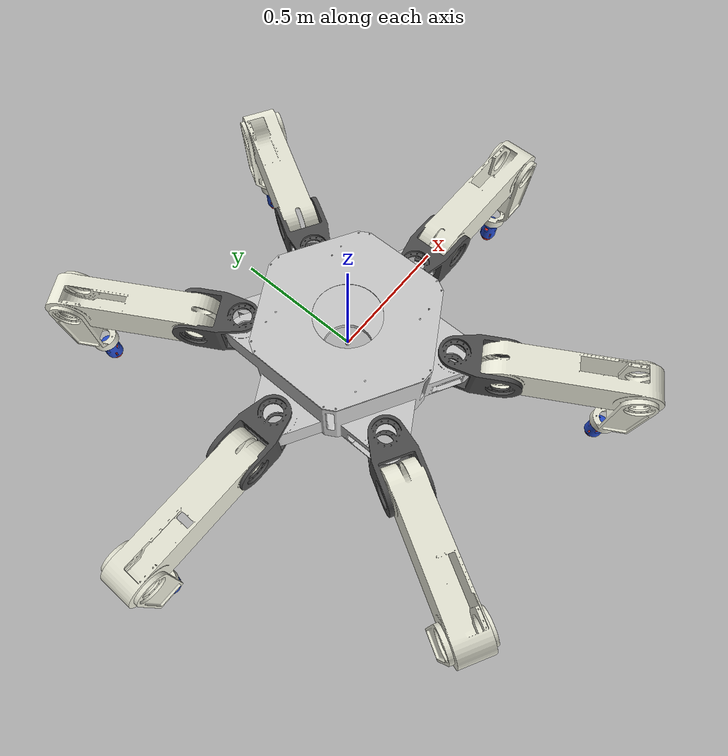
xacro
<?xml version="1.0"?>
<robot name="EISpider"
    xmlns:xacro="http://www.ros.org/wiki/xacro">

    <!-- The following included files set up definitions of parts of the robot body -->
    <xacro:include filename="$(find fast_legged_planner)/model/hit_spider/xacro/common.xacro"/>

    <!-- EISpider  trunk -->
    <xacro:include filename="$(find fast_legged_planner)/model/hit_spider/xacro/base/base.xacro"/>
    <xacro:EISpider_base/>

    <!-- EISpider  legs -->
    <xacro:include filename="$(find fast_legged_planner)/model/hit_spider/xacro/leg/leg.xacro"/>
    <xacro:EISpider_Leg LegName="lf" leg_x="${leg_lf_x}" leg_y="${leg_lf_y}" leg_yaw="${leg_lf_yaw}"/>
    <xacro:EISpider_Leg LegName="lm" leg_x="${leg_lm_x}" leg_y="${leg_lm_y}" leg_yaw="${leg_lm_yaw}"/>
    <xacro:EISpider_Leg LegName="lh" leg_x="${leg_lh_x}" leg_y="${leg_lh_y}" leg_yaw="${leg_lh_yaw}"/>
    <xacro:EISpider_Leg LegName="rf" leg_x="${leg_rf_x}" leg_y="${leg_rf_y}" leg_yaw="${leg_rf_yaw}"/>
    <xacro:EISpider_Leg LegName="rm" leg_x="${leg_rm_x}" leg_y="${leg_rm_y}" leg_yaw="${leg_rm_yaw}"/>
    <xacro:EISpider_Leg LegName="rh" leg_x="${leg_rh_x}" leg_y="${leg_rh_y}" leg_yaw="${leg_rh_yaw}"/>
    <xacro:include filename="$(find fast_legged_planner)/model/hit_spider/gazebo/gazebo.urdf.xacro"/>

</robot>

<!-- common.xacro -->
<robot xmlns:xacro="http://www.ros.org/wiki/xacro" name="robot param">
    <!--pi-->
    <xacro:property name="PI" value="3.1415926535897931"/>

    <!--leg roots' position-->
    <xacro:property name="leg_lf_x" value="0.3464" />
    <xacro:property name="leg_lm_x" value="0.0" />
    <xacro:property name="leg_lh_x" value="-0.3464" />
    <xacro:property name="leg_rh_x" value="-0.3464" />
    <xacro:property name="leg_rm_x" value="0" />
    <xacro:property name="leg_rf_x" value="0.3464" />
    <xacro:property name="leg_lf_y" value="0.2" />
    <xacro:property name="leg_lm_y" value="0.4" />
    <xacro:property name="leg_lh_y" value="0.2" />
    <xacro:property name="leg_rh_y" value="-0.2" />
    <xacro:property name="leg_rm_y" value="-0.4" />
    <xacro:property name="leg_rf_y" value="-0.2" />
    <xacro:property name="leg_lf_yaw" value="${PI/6}" />
    <xacro:property name="leg_lm_yaw" value="${PI/2}" />
    <xacro:property name="leg_lh_yaw" value="${5*PI/6}" />
    <xacro:property name="leg_rh_yaw" value="${-5*PI/6}" />
    <xacro:property name="leg_rm_yaw" value="${-PI/2}" />
    <xacro:property name="leg_rf_yaw" value="${-PI/6}" />
    <!--leg links' length-->
    <xacro:property name="link1_length" value="0.18" />
    <xacro:property name="link2_length" value="0.5" />
    <xacro:property name="link3_length" value="0.5" />

    <!--mass-->
    <xacro:property name="base_mass" value="121.8957" />
    <xacro:property name="link1_mass" value="3.6031" />
    <xacro:property name="link2_mass" value="21.9855" />
    <xacro:property name="link3_mass" value="7.4018" />

    <!--inerials-->
    <xacro:property name="base_ixx" value="5.0930" />
    <xacro:property name="base_iyy" value="5.0930" />
    <xacro:property name="base_izz" value="8.2937" />
    <xacro:property name="link1_ixx" value="0.011212" />
    <xacro:property name="link1_iyy" value="0.03169" />
    <xacro:property name="link1_izz" value="0.03169" />
    <xacro:property name="link2_ixx" value="0.07020" />
    <xacro:property name="link2_iyy" value="0.7228" />
    <xacro:property name="link2_izz" value="0.7228" />
    <xacro:property name="link3_ixx" value="0.02290" />
    <xacro:property name="link3_iyy" value="0.14949" />
    <xacro:property name="link3_izz" value="0.14949" />
</robot>

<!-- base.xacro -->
<robot xmlns:xacro="http://ros.org/wiki/xacro">

    <!-- ================================ Robot Base ================================ -->
    <!-- The xacro macro xacro: EISpider_base contains: base and trunk -->
    <xacro:macro name="EISpider_base">
        <!-- Floating-base Joint -->
        <joint name="jnt_floating_base" type="fixed">
            <origin xyz="0 0 0" rpy="0 0 ${PI/2}"/>
            <parent link="link_base"/>
            <child link="link_trunk"/>
        </joint>
        <!-- Links -->
        <!-- Footprint link -->
        <link name="link_base">
            <visual>
                <geometry>
                    <cylinder length="0.01" radius="0.01"/>
                </geometry>
                <material name="bbbb">
                    <color rgba="0.8 0.8 0.8 1"/>
                </material>
            </visual>
        </link>
        <!-- Base link -->
        <link name="link_trunk">
            <visual>
                <origin xyz="-0.4264 -0.48 -0.07" rpy="${PI/2} 0 ${PI/2}"/>
                <geometry>
                    <mesh filename="package://fast_legged_planner/model/hit_spider/meshes/base_1.stl" scale="0.001 0.001 0.001"/>
                </geometry>
                <material name="bbbb"/>
            </visual>

            <visual>
                <origin xyz=" -0.350 -0.315 0.22" rpy="${PI/2} 0 ${PI/2}"/>
                <geometry>
                    <mesh filename="package://fast_legged_planner/model/hit_spider/meshes/base_2.stl" scale="0.001 0.001 0.001"/>
                </geometry>
                <material name="bbbb"/>
            </visual>

            <collision>
                <origin xyz="0 0 0.1" rpy="0 0 0"/>
                <geometry>
                    <cylinder length="0.3" radius="0.3"/>
                </geometry>
            </collision>

            <inertial>
                <origin xyz="0 0 0.1" rpy="0 0 0"/>
                <mass value="${base_mass}"/>
                <inertia ixx="${base_ixx}" ixy="0.0" ixz="0.0" iyy="${base_iyy}" iyz="0.0" izz="${base_izz}"/>
            </inertial>
        </link>

        <!--/IMU sensor gazebo plugin-->
        <xacro:include filename="$(find fast_legged_planner)/model/hit_spider/xacro/base/base.gazebo.xacro"/>
        <xacro:IMUsensor load_imu_sensor="true" link_name="link_base" x="0" y="0" z="0"/>
    </xacro:macro>

</robot>

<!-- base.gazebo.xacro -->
<robot xmlns:xacro="http://ros.org/wiki/xacro">
    <xacro:macro name="IMUsensor"  params="load_imu_sensor link_name x y z ">
        <xacro:if value="${load_imu_sensor}">
            <link name="imu_link">
            </link>
            <joint name="imu_joint" type="fixed">
                <parent link="${link_name}"/>
                <child link="imu_link"/>
                <origin xyz="${x} ${y} ${z}" rpy="0 0 0"/>
                <axis xyz="0 0 1"/>
            </joint>
            <gazebo>
                <plugin name="imu_plugin" filename="libgazebo_ros_imu.so">
                    <alwaysOn>true</alwaysOn>
                    <updateRate>100.0</updateRate>
                    <bodyName>imu_link</bodyName>
                    <frameName>imu_link</frameName>
                    <topicName>EISpider/imu_data</topicName>
                    <gaussianNoise>1e-6</gaussianNoise>
                </plugin>
             </gazebo>
        </xacro:if>
	</xacro:macro>
</robot>

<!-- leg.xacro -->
<robot xmlns:xacro="http://ros.org/wiki/xacro">
	<!--leg xacro-->
	<xacro:macro name="EISpider_Leg" params="LegName leg_x leg_y leg_yaw">
		<link name="link_${LegName}_1">
			<visual>
				<origin xyz="-0.065 0.080 -0.080" rpy="${PI/2} 0 0"/>
				<geometry>
					<mesh filename="package://fast_legged_planner/model/hit_spider/meshes/leg1.stl" scale="0.001 0.001 0.001"/>
				</geometry>
				<material name="xccc">
					<color rgba="0.3 0.3 0.3 1"/>
				</material>
			</visual>
			<inertial>
				<origin xyz="${link1_length/2} 0 0" rpy="0 0 0"/>
				<mass value="${link1_mass}"/>
				<inertia ixx="${link1_ixx}" ixy="0.0" ixz="0.0" iyy="${link1_iyy}" iyz="0.0" izz="${link1_izz}"/>
			</inertial>
		</link>
		<link name="link_${LegName}_2">
			<visual>
				<origin xyz="-0.086 0.086 0.065" rpy="0 ${PI/2} ${-PI/2}"/>
				<geometry>
					<mesh filename="package://fast_legged_planner/model/hit_spider/meshes/leg2.stl" scale="0.001 0.001 0.001"/>
				</geometry>
				<material name="sssss">
					<color rgba="0.914 0.914 0.847 1"/>
				</material>
			</visual>

			<inertial>
				<origin xyz="${link2_length/2} 0 0" rpy="0 0 0"/>
				<mass value="${link2_mass}"/>
				<inertia ixx="${link2_ixx}" ixy="0.0" ixz="0.0" iyy="${link2_iyy}" iyz="0.0" izz="${link2_izz}"/>
			</inertial>
		</link>

		<link name="link_${LegName}_3">
			<visual>
				<origin xyz="0.373 -0.065 -0.085" rpy="0 0 ${PI/2}"/>
				<geometry>
					<mesh filename="package://fast_legged_planner/model/hit_spider/meshes/leg3.stl" scale="0.001 0.001 0.001"/>
				</geometry>
				<material name="sssss"/>
			</visual>
			<visual>
				<origin xyz="0.40 -0.036 -0.036" rpy="0 0 0"/>
				<geometry>
					<mesh filename="package://fast_legged_planner/model/hit_spider/meshes/foot.stl" scale="0.001 0.001 0.001"/>
				</geometry>
			</visual>
			<collision>
				<origin xyz="${link3_length/2} 0 0" rpy="0 0 0"/>
				<geometry>
					<box size="${link3_length} 0.05 0.05"/>
				</geometry>
			</collision>
			<inertial>
				<origin xyz="${link3_length/2} 0 0" rpy="0 0 0"/>
				<mass value="${link3_mass}"/>
				<inertia ixx="${link3_ixx}" ixy="0.0" ixz="0.0" iyy="${link3_iyy}" iyz="0.0" izz="${link3_izz}"/>
			</inertial>
		</link>

		<link name="link_${LegName}_foot">
			<visual>
				<origin xyz="0 0 0" rpy="0 0 0"/>
				<geometry>
					<!--cylinder length="0.1" radius="0.05"/-->
					<sphere radius="0.03"/>
				</geometry>
			</visual>
			<collision>
				<origin xyz="0 0 0" rpy="0 0 0"/>
				<geometry>
					<!--cylinder length="0.1" radius="0.05"/-->
					<sphere radius="0.03"/>
				</geometry>
			</collision>
			<inertial>
				<origin xyz="0 0 0" rpy="0 0 0"/>
				<mass value="0.01"/>
				<inertia ixx="0.01" ixy="0.0" ixz="0.0" iyy="0.01" iyz="0.0" izz="0.01"/>
			</inertial>
		</link>

		<!--joints-->
		<joint name="joint_${LegName}_1" type="revolute">
			<parent link="link_trunk"/>
			<child link="link_${LegName}_1"/>
			<origin xyz="${leg_x} ${leg_y} 0" rpy="0 0 ${leg_yaw}"/>
			<axis xyz="0 0 1"/>
			<limit effort="350.0" lower="-${PI/2}" upper="${PI/2}" velocity="4.0"/>
			<dynamics damping="30"/>
		</joint>

		<joint name="joint_${LegName}_2" type="revolute">
			<parent link="link_${LegName}_1"/>
			<child link="link_${LegName}_2"/>
			<origin xyz="${link1_length} 0 0" rpy="${PI/2} 0 0"/>
			<axis xyz="0 0 1"/>
			<limit effort="500.0" lower="-${PI/3}" upper="${PI/3}" velocity="4.0"/>
			<dynamics damping="30"/>
		</joint>

		<joint name="joint_${LegName}_3" type="revolute">
			<parent link="link_${LegName}_2"/>
			<child link="link_${LegName}_3"/>
			<origin xyz="${link2_length} 0 0" rpy="0 0 ${-PI/2}"/>
			<axis xyz="0 0 1"/>
			<limit effort="500.0" lower="-${PI/2}" upper="${PI/2}" velocity="4.0"/>
			<dynamics damping="30"/>
		</joint>

		<joint name="joint_${LegName}_ft_sensor" type="fixed">
			<parent link="link_${LegName}_3"/>
			<child link="link_${LegName}_foot"/>
			<origin xyz="${link3_length} 0 0" rpy="0 ${PI/2} 0"/>
			<axis xyz="0 0 1"/>
		</joint>

		<xacro:include filename="$(find fast_legged_planner)/model/hit_spider/xacro/leg/leg.transmission.xacro"/>
		<xacro:leg_transmission LegName="${LegName}"/>

		<xacro:include filename="$(find fast_legged_planner)/model/hit_spider/xacro/leg/leg.gazebo.sensor.xacro"/>
		<xacro:legFTsensor LegName="${LegName}"/>

	</xacro:macro>
</robot>
